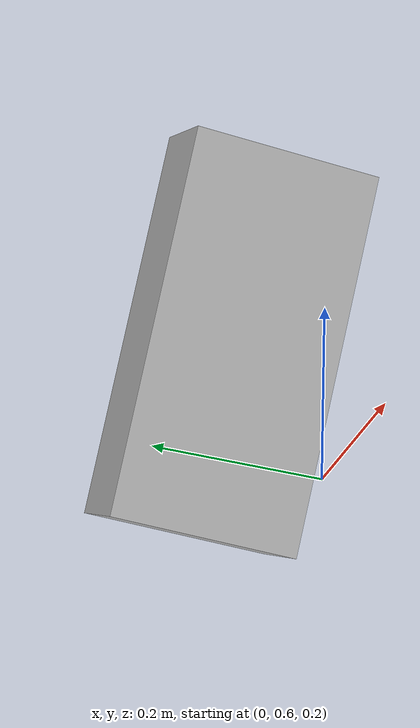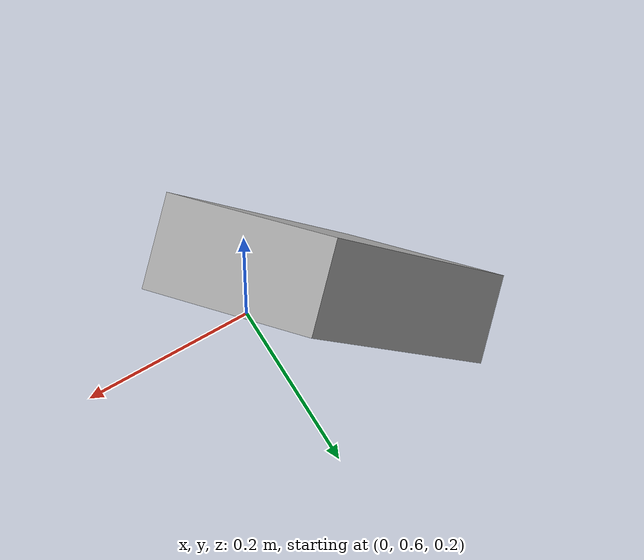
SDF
<?xml version='1.0' encoding='utf-8'?>
<sdf version="1.7">
  <model name="pose_link_all">
    <link name="link">
      <pose>0.05 0.1 0.2 0.1 0.2 0.3</pose>
      <visual name="link_visual">
        <pose>0.03 0.6 0.12 0.2 0.3 0.4</pose>
        <geometry>
          <box>
            <size>0.1 0.2 0.4</size>
          </box>
        </geometry>
      </visual>
      <collision name="link_collision">
        <pose>0.04 0.8 0.16 0.3 0.4 0.5</pose>
        <geometry>
          <box>
            <size>0.1 0.2 0.4</size>
          </box>
        </geometry>
      </collision>
      <inertial>
        <pose>0.05 0.1 0.2 0.4 0.5 0.6</pose>
        <mass>1.23</mass>
        <inertia>
          <ixx>0.0205</ixx>
          <ixy>0</ixy>
          <ixz>0</ixz>
          <iyy>0.017425</iyy>
          <iyz>0</iyz>
          <izz>0.005125</izz>
        </inertia>
      </inertial>
    </link>
  </model>
</sdf>
